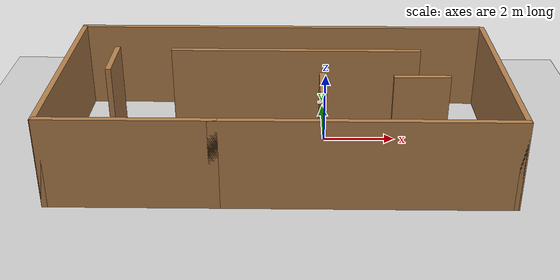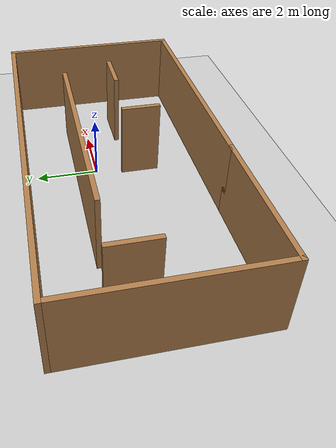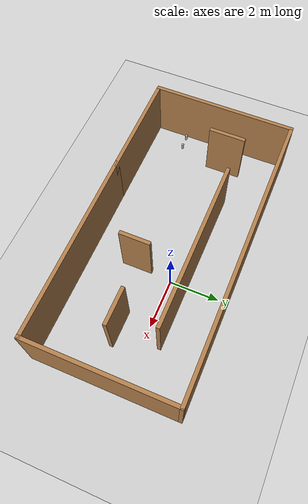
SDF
<sdf version="1.7">
 <world name="default">
  <light name="sun" type="directional">
   <pose>0 0 10 0 -0 0</pose>
   <diffuse>0.8 0.8 0.8 1</diffuse>
   <specular>0.2 0.2 0.2 1</specular>
   <attenuation>
    <range>1000</range>
    <constant>0.9</constant>
    <linear>0.01</linear>
    <quadratic>0.001</quadratic>
   </attenuation>
   <direction>-0.5 0.1 -0.9</direction>
   <spot><inner_angle>0</inner_angle><outer_angle>0</outer_angle><falloff>0</falloff></spot>
  </light>
  <model name="ground_plane">
   <static>1</static>
   <link name="link">
    <collision name="collision">
     <geometry><plane><normal>0 0 1</normal><size>100 100</size></plane></geometry>
     <surface><friction><ode><mu>100</mu><mu2>50</mu2></ode></friction></surface>
    </collision>
    <visual name="visual">
     <cast_shadows>0</cast_shadows>
     <geometry><plane><normal>0 0 1</normal><size>100 100</size></plane></geometry>
     <material>
      <script><uri>file://media/materials/scripts/gazebo.material</uri><name>Gazebo/Grey</name></script>
     </material>
    </visual>
   </link>
  </model>
  <gravity>0 0 -9.8</gravity>
  <magnetic_field>6e-06 2.3e-05 -4.2e-05</magnetic_field>
  <atmosphere type="adiabatic"/>
  <physics name="default_physics" default="0" type="ode">
   <max_step_size>0.001</max_step_size>
   <real_time_factor>1</real_time_factor>
   <real_time_update_rate>1000</real_time_update_rate>
  </physics>
  <scene><ambient>0.4 0.4 0.4 1</ambient><background>0.7 0.7 0.7 1</background><shadows>1</shadows></scene>
  <audio><device>default</device></audio>
  <spherical_coordinates>
   <surface_model>EARTH_WGS84</surface_model>
   <latitude_deg>0</latitude_deg>
   <longitude_deg>0</longitude_deg>
   <elevation>0</elevation>
   <heading_deg>0</heading_deg>
  </spherical_coordinates>
  <model name="xinyang">
   <pose>-1.215 -0.575 0 0 -0 0</pose>
   <link name="Wall_10">
    <collision name="Wall_10_Collision">
     <geometry><box><size>7 0.15 2.5</size></box></geometry>
     <pose>0 0 1.25 0 -0 0</pose>
    </collision>
    <visual name="Wall_10_Visual">
     <pose>0 0 1.25 0 -0 0</pose>
     <geometry><box><size>7 0.15 2.5</size></box></geometry>
     <material>
      <script><uri>file://media/materials/scripts/gazebo.material</uri><name>Gazebo/Wood</name></script>
      <ambient>1 1 1 1</ambient>
     </material>
     <meta><layer>0</layer></meta>
    </visual>
    <pose>0.385784 1.21449 0 0 -0 3.14159</pose>
   </link>
   <link name="Wall_12">
    <collision name="Wall_12_Collision">
     <geometry><box><size>1.25 0.15 2.5</size></box></geometry>
     <pose>0 0 1.25 0 -0 0</pose>
    </collision>
    <visual name="Wall_12_Visual">
     <pose>0 0 1.25 0 -0 0</pose>
     <geometry><box><size>1.25 0.15 2.5</size></box></geometry>
     <material>
      <script><uri>file://media/materials/scripts/gazebo.material</uri><name>Gazebo/Wood</name></script>
      <ambient>1 1 1 1</ambient>
     </material>
     <meta><layer>0</layer></meta>
    </visual>
    <pose>1.08035 -0.89638 0 0 -0 1.5708</pose>
   </link>
   <link name="Wall_14">
    <collision name="Wall_14_Collision">
     <geometry><box><size>1.5 0.15 2.5</size></box></geometry>
     <pose>0 0 1.25 0 -0 0</pose>
    </collision>
    <visual name="Wall_14_Visual">
     <pose>0 0 1.25 0 -0 0</pose>
     <geometry><box><size>1.5 0.15 2.5</size></box></geometry>
     <material>
      <script><uri>file://media/materials/scripts/gazebo.material</uri><name>Gazebo/Wood</name></script>
      <ambient>1 1 1 1</ambient>
     </material>
     <meta><layer>0</layer></meta>
    </visual>
    <pose>-4.65878 0.626446 0 0 -0 -1.5708</pose>
   </link>
   <link name="Wall_16">
    <collision name="Wall_16_Collision">
     <geometry><box><size>1.5 0.15 2.5</size></box></geometry>
     <pose>0 0 1.25 0 -0 0</pose>
    </collision>
    <visual name="Wall_16_Visual">
     <pose>0 0 1.25 0 -0 0</pose>
     <geometry><box><size>1.5 0.15 2.5</size></box></geometry>
     <material>
      <script><uri>file://media/materials/scripts/gazebo.material</uri><name>Gazebo/Wood</name></script>
      <ambient>1 1 1 1</ambient>
     </material>
     <meta><layer>0</layer></meta>
    </visual>
    <pose>3.72057 -0.472467 0 0 -0 0</pose>
   </link>
   <link name="Wall_4">
    <collision name="Wall_4_Collision">
     <geometry><box><size>7.75 0.15 2.5</size></box></geometry>
     <pose>0 0 1.25 0 -0 0</pose>
    </collision>
    <visual name="Wall_4_Visual">
     <pose>0 0 1.25 0 -0 0</pose>
     <geometry><box><size>7.75 0.15 2.5</size></box></geometry>
     <material>
      <script><uri>file://media/materials/scripts/gazebo.material</uri><name>Gazebo/Wood</name></script>
      <ambient>1 1 1 1</ambient>
     </material>
     <meta><layer>0</layer></meta>
    </visual>
    <pose>2.125 -2.925 0 0 -0 0</pose>
   </link>
   <link name="Wall_5">
    <collision name="Wall_5_Collision">
     <geometry><box><size>6 0.15 2.5</size></box></geometry>
     <pose>0 0 1.25 0 -0 0</pose>
    </collision>
    <visual name="Wall_5_Visual">
     <pose>0 0 1.25 0 -0 0</pose>
     <geometry><box><size>6 0.15 2.5</size></box></geometry>
     <material>
      <script><uri>file://media/materials/scripts/gazebo.material</uri><name>Gazebo/Wood</name></script>
      <ambient>1 1 1 1</ambient>
     </material>
     <meta><layer>0</layer></meta>
    </visual>
    <pose>5.925 0 0 0 -0 1.5708</pose>
   </link>
   <link name="Wall_6">
    <collision name="Wall_6_Collision">
     <geometry><box><size>12 0.15 2.5</size></box></geometry>
     <pose>0 0 1.25 0 -0 0</pose>
    </collision>
    <visual name="Wall_6_Visual">
     <pose>0 0 1.25 0 -0 0</pose>
     <geometry><box><size>12 0.15 2.5</size></box></geometry>
     <material>
      <script><uri>file://media/materials/scripts/gazebo.material</uri><name>Gazebo/Wood</name></script>
      <ambient>1 1 1 1</ambient>
     </material>
     <meta><layer>0</layer></meta>
    </visual>
    <pose>-0 2.925 0 0 -0 3.14159</pose>
   </link>
   <link name="Wall_7">
    <collision name="Wall_7_Collision">
     <geometry><box><size>6 0.15 2.5</size></box></geometry>
     <pose>0 0 1.25 0 -0 0</pose>
    </collision>
    <visual name="Wall_7_Visual">
     <pose>0 0 1.25 0 -0 0</pose>
     <geometry><box><size>6 0.15 2.5</size></box></geometry>
     <material>
      <script><uri>file://media/materials/scripts/gazebo.material</uri><name>Gazebo/Wood</name></script>
      <ambient>1 1 1 1</ambient>
     </material>
     <meta><layer>0</layer></meta>
    </visual>
    <pose>-5.925 0 0 0 -0 -1.5708</pose>
   </link>
   <link name="Wall_8">
    <collision name="Wall_8_Collision">
     <geometry><box><size>4.5 0.15 2.5</size></box></geometry>
     <pose>0 0 1.25 0 -0 0</pose>
    </collision>
    <visual name="Wall_8_Visual">
     <pose>0 0 1.25 0 -0 0</pose>
     <geometry><box><size>4.5 0.15 2.5</size></box></geometry>
     <material>
      <script><uri>file://media/materials/scripts/gazebo.material</uri><name>Gazebo/Wood</name></script>
      <ambient>1 1 1 1</ambient>
     </material>
     <meta><layer>0</layer></meta>
    </visual>
    <pose>-3.75 -2.925 0 0 -0 0</pose>
   </link>
   <static>1</static>
  </model>
  <model name="beer">
   <link name="link">
    <pose>0 0 0.115 0 -0 0</pose>
    <inertial>
     <mass>0.39</mass>
     <inertia><ixx>0.00058</ixx><ixy>0</ixy><ixz>0</ixz><iyy>0.00058</iyy><iyz>0</iyz><izz>0.00019</izz></inertia>
    </inertial>
    <collision name="collision">
     <geometry><cylinder><radius>0.055</radius><length>0.23</length></cylinder></geometry>
    </collision>
    <visual name="visual">
     <geometry><cylinder><radius>0.055</radius><length>0.23</length></cylinder></geometry>
     <material>
      <script>
       <uri>model://beer/materials/scripts</uri>
       <uri>model://beer/materials/textures</uri>
       <name>Beer/Diffuse</name>
      </script>
     </material>
    </visual>
   </link>
   <pose>-6.89964 -2.07953 -2e-06 1e-06 -0 -1e-06</pose>
  </model>
  <model name="beer_1">
   <link name="link">
    <pose>0 0 0.115 0 -0 0</pose>
    <inertial>
     <mass>0.39</mass>
     <inertia><ixx>0.00058</ixx><ixy>0</ixy><ixz>0</ixz><iyy>0.00058</iyy><iyz>0</iyz><izz>0.00019</izz></inertia>
    </inertial>
    <collision name="collision">
     <geometry><cylinder><radius>0.055</radius><length>0.23</length></cylinder></geometry>
    </collision>
    <visual name="visual">
     <geometry><cylinder><radius>0.055</radius><length>0.23</length></cylinder></geometry>
     <material>
      <script>
       <uri>model://beer/materials/scripts</uri>
       <uri>model://beer/materials/textures</uri>
       <name>Beer/Diffuse</name>
      </script>
     </material>
    </visual>
   </link>
   <pose>-6.37168 -2.04583 -2e-06 1e-06 -0 -1e-06</pose>
  </model>
 </world>
</sdf>
